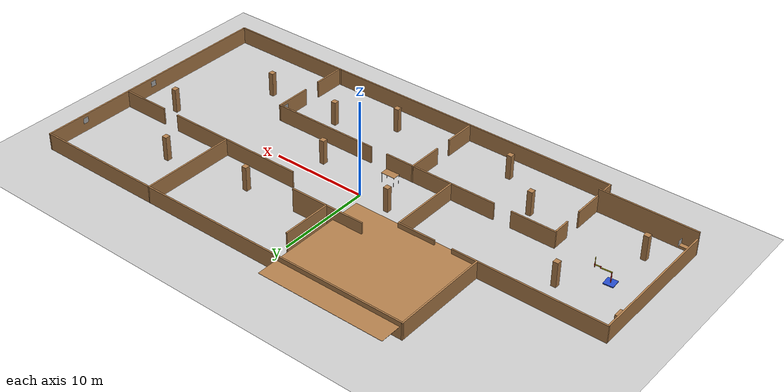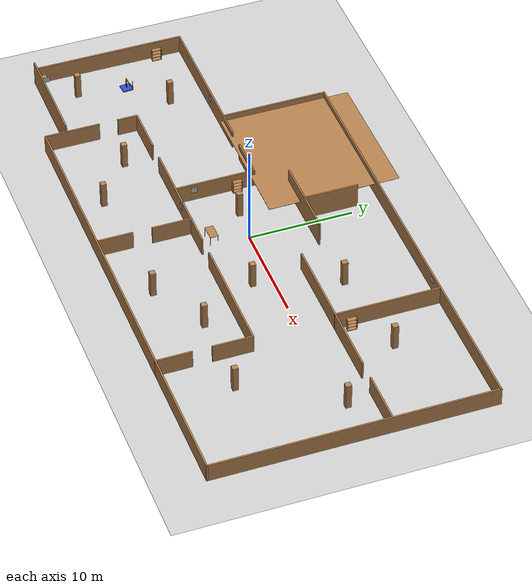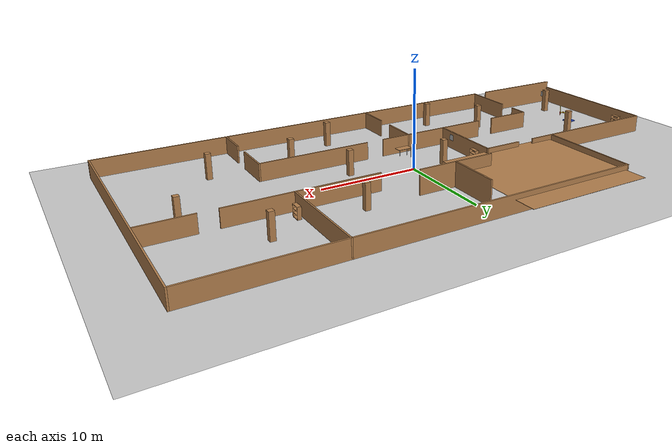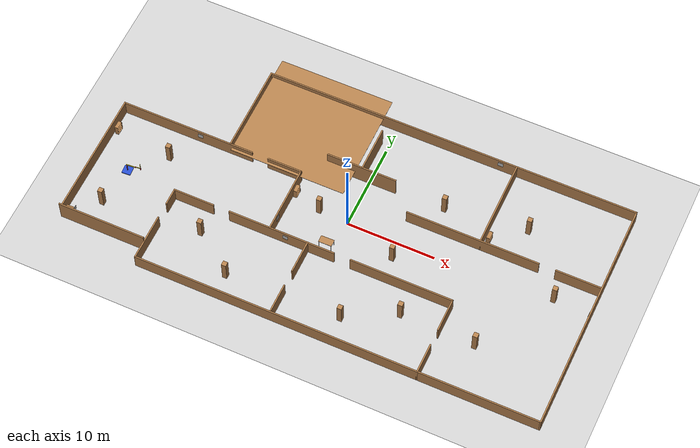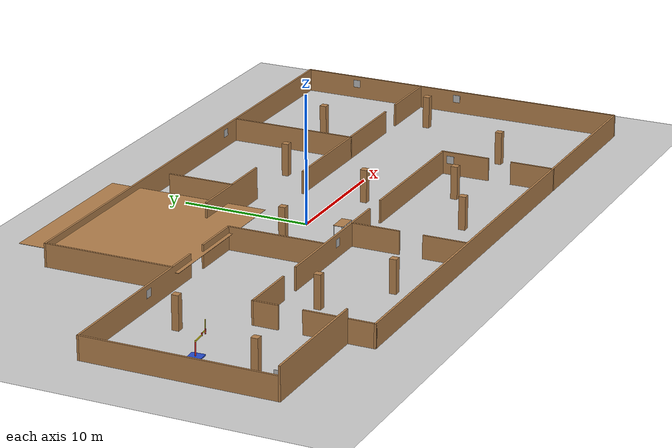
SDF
<sdf version="1.7">
 <world name="default">
  <light name="sun" type="directional">
   <pose>0 0 10 0 -0 0</pose>
   <diffuse>0.8 0.8 0.8 1</diffuse>
   <specular>0.2 0.2 0.2 1</specular>
   <attenuation>
    <range>1000</range>
    <constant>0.9</constant>
    <linear>0.01</linear>
    <quadratic>0.001</quadratic>
   </attenuation>
   <direction>-0.5 0.1 -0.9</direction>
   <spot><inner_angle>0</inner_angle><outer_angle>0</outer_angle><falloff>0</falloff></spot>
  </light>
  <model name="ground_plane">
   <static>1</static>
   <link name="link">
    <collision name="collision">
     <geometry><plane><normal>0 0 1</normal><size>25 25</size></plane></geometry>
     <surface><friction><ode><mu>100</mu><mu2>50</mu2></ode></friction></surface>
    </collision>
    <visual name="visual">
     <cast_shadows>0</cast_shadows>
     <geometry><plane><normal>0 0 1</normal><size>25 25</size></plane></geometry>
     <material>
      <script><uri>file://media/materials/scripts/gazebo.material</uri><name>Gazebo/Grey</name></script>
     </material>
    </visual>
   </link>
   <link name="startflag">
    <pose>0 0 0.115 0 -0 0</pose>
    <inertial>
     <mass>0.39</mass>
     <inertia><ixx>0.00058</ixx><ixy>0</ixy><ixz>0</ixz><iyy>0.00058</iyy><iyz>0</iyz><izz>0.00019</izz></inertia>
    </inertial>
    <collision name="collision"><geometry><box><size>1 1 0.01</size></box></geometry></collision>
    <visual name="visual">
     <geometry><box><size>1 1 0.01</size></box></geometry>
     <material>
      <script>
       <uri>model://apriltag/materials/scripts</uri>
       <uri>model://apriltag/materials/textures</uri>
       <name>startflag/Diffuse</name>
      </script>
     </material>
    </visual>
   </link>
  </model>
  <gravity>0 0 -9.8</gravity>
  <magnetic_field>6e-06 2.3e-05 -4.2e-05</magnetic_field>
  <atmosphere type="adiabatic"/>
  <plugin name="ros_interface_plugin" filename="librotors_gazebo_ros_interface_plugin.so"/>
  <physics name="default_physics" default="0" type="ode">
   <max_step_size>0.001</max_step_size>
   <real_time_factor>1</real_time_factor>
   <real_time_update_rate>1000</real_time_update_rate>
  </physics>
  <scene>
   <sky><clouds><speed>30</speed></clouds><sunrise>5</sunrise><time>10</time><sunset>15</sunset></sky>
   <ambient>0.5 0.5 0.5 1</ambient>
   <background>0.7 0.7 0.7 1</background>
   <shadows>1</shadows>
  </scene>
  <spherical_coordinates>
   <surface_model>EARTH_WGS84</surface_model>
   <latitude_deg>0</latitude_deg>
   <longitude_deg>0</longitude_deg>
   <elevation>0</elevation>
   <heading_deg>0</heading_deg>
  </spherical_coordinates>
  <model name="unit_box">
   <pose>-27.1631 -10.9468 1.01795 4e-06 -2e-06 0.014798</pose>
   <link name="link">
    <inertial>
     <mass>1</mass>
     <inertia>
      <ixx>0.166667</ixx>
      <ixy>0</ixy>
      <ixz>0</ixz>
      <iyy>0.166667</iyy>
      <iyz>0</iyz>
      <izz>0.166667</izz>
     </inertia>
    </inertial>
    <collision name="collision"><geometry><box><size>1 0.443614 0.00227714</size></box></geometry></collision>
    <visual name="visual">
     <geometry><box><size>1 0.443614 0.00227714</size></box></geometry>
     <material>
      <script><uri>file://media/materials/scripts/gazebo.material</uri><name>Gazebo/Wood</name></script>
     </material>
    </visual>
   </link>
   <static>0</static>
  </model>
  <model name="table">
   <static>0</static>
   <link name="link">
    <collision name="surface">
     <pose>0 0 1 0 -0 0</pose>
     <geometry><box><size>1.5 0.8 0.03</size></box></geometry>
     <surface><friction><ode><mu>0.6</mu><mu2>0.6</mu2></ode></friction></surface>
    </collision>
    <visual name="visual1">
     <pose>0 0 1 0 -0 0</pose>
     <geometry><box><size>1.5 0.8 0.03</size></box></geometry>
     <material>
      <script><uri>file://media/materials/scripts/gazebo.material</uri><name>Gazebo/Wood</name></script>
     </material>
    </visual>
    <collision name="front_left_leg">
     <pose>0.68 0.38 0.5 0 -0 0</pose>
     <geometry><cylinder><radius>0.02</radius><length>1</length></cylinder></geometry>
    </collision>
    <visual name="front_left_leg">
     <pose>0.68 0.38 0.5 0 -0 0</pose>
     <geometry><cylinder><radius>0.02</radius><length>1</length></cylinder></geometry>
     <material>
      <script><uri>file://media/materials/scripts/gazebo.material</uri><name>Gazebo/Grey</name></script>
     </material>
    </visual>
    <collision name="front_right_leg">
     <pose>0.68 -0.38 0.5 0 -0 0</pose>
     <geometry><cylinder><radius>0.02</radius><length>1</length></cylinder></geometry>
    </collision>
    <visual name="front_right_leg">
     <pose>0.68 -0.38 0.5 0 -0 0</pose>
     <geometry><cylinder><radius>0.02</radius><length>1</length></cylinder></geometry>
     <material>
      <script><uri>file://media/materials/scripts/gazebo.material</uri><name>Gazebo/Grey</name></script>
     </material>
    </visual>
    <collision name="back_right_leg">
     <pose>-0.68 -0.38 0.5 0 -0 0</pose>
     <geometry><cylinder><radius>0.02</radius><length>1</length></cylinder></geometry>
    </collision>
    <visual name="back_right_leg">
     <pose>-0.68 -0.38 0.5 0 -0 0</pose>
     <geometry><cylinder><radius>0.02</radius><length>1</length></cylinder></geometry>
     <material>
      <script><uri>file://media/materials/scripts/gazebo.material</uri><name>Gazebo/Grey</name></script>
     </material>
    </visual>
    <collision name="back_left_leg">
     <pose>-0.68 0.38 0.5 0 -0 0</pose>
     <geometry><cylinder><radius>0.02</radius><length>1</length></cylinder></geometry>
    </collision>
    <visual name="back_left_leg">
     <pose>-0.68 0.38 0.5 0 -0 0</pose>
     <geometry><cylinder><radius>0.02</radius><length>1</length></cylinder></geometry>
     <material>
      <script><uri>file://media/materials/scripts/gazebo.material</uri><name>Gazebo/Grey</name></script>
     </material>
    </visual>
    <inertial>
     <inertia><ixx>1</ixx><ixy>0</ixy><ixz>0</ixz><iyy>1</iyy><iyz>0</iyz><izz>1</izz></inertia>
     <mass>1</mass>
    </inertial>
   </link>
   <pose>-0.890347 -3.33155 -3e-06 -3e-06 0 0.015319</pose>
  </model>
  <model name="unit_box_0">
   <pose>-8.29153 8.90939 1.29125 -1e-06 -1e-06 0.000864</pose>
   <link name="link">
    <inertial>
     <mass>1</mass>
     <inertia>
      <ixx>0.166667</ixx>
      <ixy>0</ixy>
      <ixz>0</ixz>
      <iyy>0.166667</iyy>
      <iyz>0</iyz>
      <izz>0.166667</izz>
     </inertia>
    </inertial>
    <collision name="collision"><geometry><box><size>13.2598 12.8069 0.0224832</size></box></geometry></collision>
    <visual name="visual">
     <geometry><box><size>13.2598 12.8069 0.0224832</size></box></geometry>
     <material>
      <script><uri>file://media/materials/scripts/gazebo.material</uri><name>Gazebo/Wood</name></script>
     </material>
    </visual>
   </link>
   <static>0</static>
  </model>
  <model name="unit_box_0_clone">
   <pose>4.08237 -10.6562 1.29125 -1e-06 -1e-06 0.014305</pose>
   <link name="link">
    <inertial>
     <mass>1</mass>
     <inertia>
      <ixx>0.166667</ixx>
      <ixy>0</ixy>
      <ixz>0</ixz>
      <iyy>0.166667</iyy>
      <iyz>0</iyz>
      <izz>0.166667</izz>
     </inertia>
    </inertial>
    <collision name="collision"><geometry><box><size>0.52404 0.528614 2.5825</size></box></geometry></collision>
    <visual name="visual">
     <geometry><box><size>0.52404 0.528614 2.5825</size></box></geometry>
     <material>
      <script><uri>file://media/materials/scripts/gazebo.material</uri><name>Gazebo/Wood</name></script>
     </material>
    </visual>
   </link>
   <static>0</static>
  </model>
  <model name="unit_box_0_clone_0">
   <pose>8.5995 5.89903 1.29125 -1e-06 1e-06 -0.004119</pose>
   <link name="link">
    <inertial>
     <mass>1</mass>
     <inertia>
      <ixx>0.166667</ixx>
      <ixy>0</ixy>
      <ixz>0</ixz>
      <iyy>0.166667</iyy>
      <iyz>0</iyz>
      <izz>0.166667</izz>
     </inertia>
    </inertial>
    <collision name="collision"><geometry><box><size>0.52404 0.528614 2.5825</size></box></geometry></collision>
    <visual name="visual">
     <geometry><box><size>0.52404 0.528614 2.5825</size></box></geometry>
     <material>
      <script><uri>file://media/materials/scripts/gazebo.material</uri><name>Gazebo/Wood</name></script>
     </material>
    </visual>
   </link>
   <static>0</static>
  </model>
  <model name="unit_box_0_clone_2">
   <pose>9.54754 -7.70657 1.29125 -1e-06 -1e-06 0.000456</pose>
   <link name="link">
    <inertial>
     <mass>1</mass>
     <inertia>
      <ixx>0.166667</ixx>
      <ixy>0</ixy>
      <ixz>0</ixz>
      <iyy>0.166667</iyy>
      <iyz>0</iyz>
      <izz>0.166667</izz>
     </inertia>
    </inertial>
    <collision name="collision"><geometry><box><size>0.52404 0.528614 2.5825</size></box></geometry></collision>
    <visual name="visual">
     <geometry><box><size>0.52404 0.528614 2.5825</size></box></geometry>
     <material>
      <script><uri>file://media/materials/scripts/gazebo.material</uri><name>Gazebo/Wood</name></script>
     </material>
    </visual>
   </link>
   <static>0</static>
  </model>
  <model name="unit_box_0_clone_3">
   <pose>-3.36019 0.23049 1.29125 1e-06 -1e-06 0.00601</pose>
   <link name="link">
    <inertial>
     <mass>1</mass>
     <inertia>
      <ixx>0.166667</ixx>
      <ixy>0</ixy>
      <ixz>0</ixz>
      <iyy>0.166667</iyy>
      <iyz>0</iyz>
      <izz>0.166667</izz>
     </inertia>
    </inertial>
    <collision name="collision"><geometry><box><size>0.52404 0.528614 2.5825</size></box></geometry></collision>
    <visual name="visual">
     <geometry><box><size>0.52404 0.528614 2.5825</size></box></geometry>
     <material>
      <script><uri>file://media/materials/scripts/gazebo.material</uri><name>Gazebo/Wood</name></script>
     </material>
    </visual>
   </link>
   <static>0</static>
  </model>
  <model name="static_apriltag_0">
   <link name="link">
    <pose>0 0 0 0 1.57 0</pose>
    <inertial>
     <mass>0.39</mass>
     <inertia><ixx>0.00058</ixx><ixy>0</ixy><ixz>0</ixz><iyy>0.00058</iyy><iyz>0</iyz><izz>0.00019</izz></inertia>
    </inertial>
    <collision name="collision"><geometry><box><size>0.6 0.6 0.01</size></box></geometry></collision>
    <visual name="visual">
     <geometry><box><size>0.6 0.6 0.01</size></box></geometry>
     <material>
      <script>
       <uri>model://apriltag/materials/scripts</uri>
       <uri>model://apriltag/materials/textures</uri>
       <name>apriltag/Diffuse0</name>
      </script>
     </material>
    </visual>
    <gravity>0</gravity>
   </link>
   <pose>27.3262 -0.250082 1.2 0 -0 0</pose>
   <static>0</static>
   <pose>1.90787 0.108649 0 0 -0 0</pose>
  </model>
  <model name="static_apriltag_1">
   <link name="link">
    <pose>0 0 0 0 1.57 0</pose>
    <inertial>
     <mass>0.39</mass>
     <inertia><ixx>0.00058</ixx><ixy>0</ixy><ixz>0</ixz><iyy>0.00058</iyy><iyz>0</iyz><izz>0.00019</izz></inertia>
    </inertial>
    <collision name="collision"><geometry><box><size>0.6 0.6 0.01</size></box></geometry></collision>
    <visual name="visual">
     <geometry><box><size>0.6 0.6 0.01</size></box></geometry>
     <material>
      <script>
       <uri>model://apriltag/materials/scripts</uri>
       <uri>model://apriltag/materials/textures</uri>
       <name>apriltag/Diffuse1</name>
      </script>
     </material>
    </visual>
    <gravity>0</gravity>
   </link>
   <pose>27.3555 8.71301 1.2 0 -0 0</pose>
   <static>0</static>
   <pose>1.36256 0.459264 0 0 -0 0</pose>
  </model>
  <model name="static_apriltag_2">
   <link name="link">
    <pose>0 0 0 0 1.57 0</pose>
    <inertial>
     <mass>0.39</mass>
     <inertia><ixx>0.00058</ixx><ixy>0</ixy><ixz>0</ixz><iyy>0.00058</iyy><iyz>0</iyz><izz>0.00019</izz></inertia>
    </inertial>
    <collision name="collision"><geometry><box><size>0.6 0.6 0.01</size></box></geometry></collision>
    <visual name="visual">
     <geometry><box><size>0.6 0.6 0.01</size></box></geometry>
     <material>
      <script>
       <uri>model://apriltag/materials/scripts</uri>
       <uri>model://apriltag/materials/textures</uri>
       <name>apriltag/Diffuse2</name>
      </script>
     </material>
    </visual>
    <gravity>0</gravity>
   </link>
   <pose>-6.66377 -2.99869 1.2 0 -0 0</pose>
   <static>0</static>
   <pose>0.80811 0.829943 0 0 -0 0</pose>
  </model>
  <model name="static_apriltag_3">
   <link name="link">
    <pose>0 0 0 -1.57 1.57 -0</pose>
    <inertial>
     <mass>0.39</mass>
     <inertia><ixx>0.00058</ixx><ixy>0</ixy><ixz>0</ixz><iyy>0.00058</iyy><iyz>0</iyz><izz>0.00019</izz></inertia>
    </inertial>
    <collision name="collision"><geometry><box><size>0.6 0.6 0.01</size></box></geometry></collision>
    <visual name="visual">
     <geometry><box><size>0.6 0.6 0.01</size></box></geometry>
     <material>
      <script>
       <uri>model://apriltag/materials/scripts</uri>
       <uri>model://apriltag/materials/textures</uri>
       <name>apriltag/Diffuse3</name>
      </script>
     </material>
    </visual>
    <gravity>0</gravity>
   </link>
   <pose>-18.672 2.76225 1.2 0 -0 0</pose>
   <static>0</static>
   <pose>3.65849 3.02317 0 0 -0 0</pose>
  </model>
  <model name="static_apriltag_4">
   <link name="link">
    <pose>0 0 0 0 1.57 0</pose>
    <inertial>
     <mass>0.39</mass>
     <inertia><ixx>0.00058</ixx><ixy>0</ixy><ixz>0</ixz><iyy>0.00058</iyy><iyz>0</iyz><izz>0.00019</izz></inertia>
    </inertial>
    <collision name="collision"><geometry><box><size>0.6 0.6 0.01</size></box></geometry></collision>
    <visual name="visual">
     <geometry><box><size>0.6 0.6 0.01</size></box></geometry>
     <material>
      <script>
       <uri>model://apriltag/materials/scripts</uri>
       <uri>model://apriltag/materials/textures</uri>
       <name>apriltag/Diffuse4</name>
      </script>
     </material>
    </visual>
    <gravity>0</gravity>
   </link>
   <pose>13.9511 -5.41888 1.2 0 -0 0</pose>
   <static>0</static>
   <pose>3.93537 3.29316 0 0 -0 0</pose>
  </model>
  <model name="static_apriltag_5">
   <link name="link">
    <pose>0 0 0 -1.57 1.57 -0</pose>
    <inertial>
     <mass>0.39</mass>
     <inertia><ixx>0.00058</ixx><ixy>0</ixy><ixz>0</ixz><iyy>0.00058</iyy><iyz>0</iyz><izz>0.00019</izz></inertia>
    </inertial>
    <collision name="collision"><geometry><box><size>0.6 0.6 0.01</size></box></geometry></collision>
    <visual name="visual">
     <geometry><box><size>0.6 0.6 0.01</size></box></geometry>
     <material>
      <script>
       <uri>model://apriltag/materials/scripts</uri>
       <uri>model://apriltag/materials/textures</uri>
       <name>apriltag/Diffuse5</name>
      </script>
     </material>
    </visual>
    <gravity>0</gravity>
   </link>
   <pose>12.0603 12.9078 1.2 0 -0 0</pose>
   <static>0</static>
   <pose>5.04082 3.71574 0 0 -0 0</pose>
  </model>
  <model name="static_apriltag_6">
   <link name="link">
    <pose>0 0 0 -1.57 1.57 -0</pose>
    <inertial>
     <mass>0.39</mass>
     <inertia><ixx>0.00058</ixx><ixy>0</ixy><ixz>0</ixz><iyy>0.00058</iyy><iyz>0</iyz><izz>0.00019</izz></inertia>
    </inertial>
    <collision name="collision"><geometry><box><size>0.6 0.6 0.01</size></box></geometry></collision>
    <visual name="visual">
     <geometry><box><size>0.6 0.6 0.01</size></box></geometry>
     <material>
      <script>
       <uri>model://apriltag/materials/scripts</uri>
       <uri>model://apriltag/materials/textures</uri>
       <name>apriltag/Diffuse6</name>
      </script>
     </material>
    </visual>
    <gravity>0</gravity>
   </link>
   <pose>-4.93979 -4.87065 1.19372 -0.013081 0.015375 -0.0117</pose>
   <static>0</static>
   <pose>3.43144 4.34187 0 0 -0 0</pose>
  </model>
  <model name="static_apriltag_7">
   <link name="link">
    <pose>0 0 0 0 1.57 0</pose>
    <inertial>
     <mass>0.39</mass>
     <inertia><ixx>0.00058</ixx><ixy>0</ixy><ixz>0</ixz><iyy>0.00058</iyy><iyz>0</iyz><izz>0.00019</izz></inertia>
    </inertial>
    <collision name="collision"><geometry><box><size>0.6 0.6 0.01</size></box></geometry></collision>
    <visual name="visual">
     <geometry><box><size>0.6 0.6 0.01</size></box></geometry>
     <material>
      <script>
       <uri>model://apriltag/materials/scripts</uri>
       <uri>model://apriltag/materials/textures</uri>
       <name>apriltag/Diffuse7</name>
      </script>
     </material>
    </visual>
    <gravity>0</gravity>
   </link>
   <pose>-26.6208 -10.9627 1.2 0 -0 0</pose>
   <static>0</static>
   <pose>3.12393 4.47604 0 0 -0 0</pose>
  </model>
  <model name="bookshelf">
   <static>1</static>
   <link name="link">
    <inertial><mass>1</mass></inertial>
    <collision name="back">
     <pose>0 0.005 0.6 0 -0 0</pose>
     <geometry><box><size>0.9 0.01 1.2</size></box></geometry>
    </collision>
    <visual name="visual1">
     <pose>0 0.005 0.6 0 -0 0</pose>
     <geometry><box><size>0.9 0.01 1.2</size></box></geometry>
     <material>
      <script><uri>file://media/materials/scripts/gazebo.material</uri><name>Gazebo/Wood</name></script>
     </material>
    </visual>
    <collision name="left_side">
     <pose>0.45 -0.195 0.6 0 -0 0</pose>
     <geometry><box><size>0.02 0.4 1.2</size></box></geometry>
    </collision>
    <visual name="visual2">
     <pose>0.45 -0.195 0.6 0 -0 0</pose>
     <geometry><box><size>0.02 0.4 1.2</size></box></geometry>
     <material>
      <script><uri>file://media/materials/scripts/gazebo.material</uri><name>Gazebo/Wood</name></script>
     </material>
    </visual>
    <collision name="right_side">
     <pose>-0.45 -0.195 0.6 0 -0 0</pose>
     <geometry><box><size>0.02 0.4 1.2</size></box></geometry>
    </collision>
    <visual name="visual3">
     <pose>-0.45 -0.195 0.6 0 -0 0</pose>
     <geometry><box><size>0.02 0.4 1.2</size></box></geometry>
     <material>
      <script><uri>file://media/materials/scripts/gazebo.material</uri><name>Gazebo/Wood</name></script>
     </material>
    </visual>
    <collision name="bottom">
     <pose>0 -0.195 0.03 0 -0 0</pose>
     <geometry><box><size>0.88 0.4 0.06</size></box></geometry>
    </collision>
    <visual name="visual4">
     <pose>0 -0.195 0.03 0 -0 0</pose>
     <geometry><box><size>0.88 0.4 0.06</size></box></geometry>
     <material>
      <script><uri>file://media/materials/scripts/gazebo.material</uri><name>Gazebo/Wood</name></script>
     </material>
    </visual>
    <collision name="top">
     <pose>0 -0.195 1.19 0 -0 0</pose>
     <geometry><box><size>0.88 0.4 0.02</size></box></geometry>
    </collision>
    <visual name="visual5">
     <pose>0 -0.195 1.19 0 -0 0</pose>
     <geometry><box><size>0.88 0.4 0.02</size></box></geometry>
     <material>
      <script><uri>file://media/materials/scripts/gazebo.material</uri><name>Gazebo/Wood</name></script>
     </material>
    </visual>
    <collision name="low_shelf">
     <pose>0 -0.195 0.43 0 -0 0</pose>
     <geometry><box><size>0.88 0.4 0.02</size></box></geometry>
    </collision>
    <visual name="visual6">
     <pose>0 -0.195 0.43 0 -0 0</pose>
     <geometry><box><size>0.88 0.4 0.02</size></box></geometry>
     <material>
      <script><uri>file://media/materials/scripts/gazebo.material</uri><name>Gazebo/Wood</name></script>
     </material>
    </visual>
    <collision name="high_shelf">
     <pose>0 -0.195 0.8 0 -0 0</pose>
     <geometry><box><size>0.88 0.4 0.02</size></box></geometry>
    </collision>
    <visual name="visual7">
     <pose>0 -0.195 0.8 0 -0 0</pose>
     <geometry><box><size>0.88 0.4 0.02</size></box></geometry>
     <material>
      <script><uri>file://media/materials/scripts/gazebo.material</uri><name>Gazebo/Wood</name></script>
     </material>
    </visual>
   </link>
   <pose>-6.64498 1.14571 0 0 -0 1.57</pose>
  </model>
  <model name="simple_arm">
   <link name="arm_base">
    <inertial>
     <pose>0 0 0.00099 0 -0 0</pose>
     <inertia><ixx>1.11</ixx><ixy>0</ixy><ixz>0</ixz><iyy>100.11</iyy><iyz>0</iyz><izz>1.01</izz></inertia>
     <mass>101</mass>
    </inertial>
    <collision name="arm_base_geom">
     <pose>0 0 0.05 0 -0 0</pose>
     <geometry><box><size>1 1 0.1</size></box></geometry>
    </collision>
    <visual name="arm_base_geom_visual">
     <pose>0 0 0.05 0 -0 0</pose>
     <geometry><box><size>1 1 0.1</size></box></geometry>
     <material>
      <script><uri>file://media/materials/scripts/gazebo.material</uri><name>Gazebo/Blue</name></script>
     </material>
    </visual>
    <collision name="arm_base_geom_arm_trunk">
     <pose>0 0 0.6 0 -0 0</pose>
     <geometry><cylinder><radius>0.05</radius><length>1</length></cylinder></geometry>
    </collision>
    <visual name="arm_base_geom_arm_trunk_visual">
     <pose>0 0 0.6 0 -0 0</pose>
     <geometry><cylinder><radius>0.05</radius><length>1</length></cylinder></geometry>
     <material>
      <script><uri>file://media/materials/scripts/gazebo.material</uri><name>Gazebo/Red</name></script>
     </material>
    </visual>
   </link>
   <link name="arm_shoulder_pan">
    <pose>0 0 1.1 0 -0 0</pose>
    <inertial>
     <pose>0.045455 0 0 0 -0 0</pose>
     <inertia><ixx>0.011</ixx><ixy>0</ixy><ixz>0</ixz><iyy>0.0225</iyy><iyz>0</iyz><izz>0.0135</izz></inertia>
     <mass>1.1</mass>
    </inertial>
    <collision name="arm_shoulder_pan_geom">
     <pose>0 0 0.05 0 -0 0</pose>
     <geometry><cylinder><radius>0.05</radius><length>0.1</length></cylinder></geometry>
    </collision>
    <visual name="arm_shoulder_pan_geom_visual">
     <pose>0 0 0.05 0 -0 0</pose>
     <geometry><cylinder><radius>0.05</radius><length>0.1</length></cylinder></geometry>
     <material>
      <script><uri>file://media/materials/scripts/gazebo.material</uri><name>Gazebo/Yellow</name></script>
     </material>
    </visual>
    <collision name="arm_shoulder_pan_geom_arm_shoulder">
     <pose>0.55 0 0.05 0 -0 0</pose>
     <geometry><box><size>1 0.05 0.1</size></box></geometry>
    </collision>
    <visual name="arm_shoulder_pan_geom_arm_shoulder_visual">
     <pose>0.55 0 0.05 0 -0 0</pose>
     <geometry><box><size>1 0.05 0.1</size></box></geometry>
     <material>
      <script><uri>file://media/materials/scripts/gazebo.material</uri><name>Gazebo/Yellow</name></script>
     </material>
    </visual>
   </link>
   <link name="arm_elbow_pan">
    <pose>1.05 0 1.1 0 -0 0</pose>
    <inertial>
     <pose>0.0875 0 0.083333 0 -0 0</pose>
     <inertia>
      <ixx>0.031</ixx>
      <ixy>0</ixy>
      <ixz>0.005</ixz>
      <iyy>0.07275</iyy>
      <iyz>0</iyz>
      <izz>0.04475</izz>
     </inertia>
     <mass>1.2</mass>
    </inertial>
    <collision name="arm_elbow_pan_geom">
     <pose>0 0 0.1 0 -0 0</pose>
     <geometry><cylinder><radius>0.05</radius><length>0.2</length></cylinder></geometry>
    </collision>
    <visual name="arm_elbow_pan_geom_visual">
     <pose>0 0 0.1 0 -0 0</pose>
     <geometry><cylinder><radius>0.05</radius><length>0.2</length></cylinder></geometry>
     <material>
      <script><uri>file://media/materials/scripts/gazebo.material</uri><name>Gazebo/Red</name></script>
     </material>
    </visual>
    <collision name="arm_elbow_pan_geom_arm_elbow">
     <pose>0.3 0 0.15 0 -0 0</pose>
     <geometry><box><size>0.5 0.03 0.1</size></box></geometry>
    </collision>
    <visual name="arm_elbow_pan_geom_arm_elbow_visual">
     <pose>0.3 0 0.15 0 -0 0</pose>
     <geometry><box><size>0.5 0.03 0.1</size></box></geometry>
     <material>
      <script><uri>file://media/materials/scripts/gazebo.material</uri><name>Gazebo/Yellow</name></script>
     </material>
    </visual>
    <collision name="arm_elbow_pan_geom_arm_wrist">
     <pose>0.55 0 0.15 0 -0 0</pose>
     <geometry><cylinder><radius>0.05</radius><length>0.3</length></cylinder></geometry>
    </collision>
    <visual name="arm_elbow_pan_geom_arm_wrist_visual">
     <pose>0.55 0 0.15 0 -0 0</pose>
     <geometry><cylinder><radius>0.05</radius><length>0.3</length></cylinder></geometry>
     <material>
      <script><uri>file://media/materials/scripts/gazebo.material</uri><name>Gazebo/Red</name></script>
     </material>
    </visual>
   </link>
   <link name="arm_wrist_lift">
    <pose>1.6 0 1.05 0 -0 0</pose>
    <inertial>
     <inertia><ixx>0.01</ixx><ixy>0</ixy><ixz>0</ixz><iyy>0.01</iyy><iyz>0</iyz><izz>0.001</izz></inertia>
     <mass>0.1</mass>
    </inertial>
    <collision name="arm_wrist_lift_geom">
     <pose>0 0 0.5 0 -0 0</pose>
     <geometry><cylinder><radius>0.03</radius><length>1</length></cylinder></geometry>
    </collision>
    <visual name="arm_wrist_lift_geom_visual">
     <pose>0 0 0.5 0 -0 0</pose>
     <geometry><cylinder><radius>0.03</radius><length>1</length></cylinder></geometry>
     <material>
      <script><uri>file://media/materials/scripts/gazebo.material</uri><name>Gazebo/Yellow</name></script>
     </material>
    </visual>
   </link>
   <link name="arm_wrist_roll">
    <pose>1.6 0 1 0 -0 0</pose>
    <inertial>
     <inertia><ixx>0.01</ixx><ixy>0</ixy><ixz>0</ixz><iyy>0.01</iyy><iyz>0</iyz><izz>0.001</izz></inertia>
     <mass>0.1</mass>
    </inertial>
    <collision name="arm_wrist_roll_geom">
     <pose>0 0 0.025 0 -0 0</pose>
     <geometry><cylinder><radius>0.05</radius><length>0.05</length></cylinder></geometry>
    </collision>
    <visual name="arm_wrist_roll_geom_visual">
     <pose>0 0 0.025 0 -0 0</pose>
     <geometry><cylinder><radius>0.05</radius><length>0.05</length></cylinder></geometry>
     <material>
      <script><uri>file://media/materials/scripts/gazebo.material</uri><name>Gazebo/Red</name></script>
     </material>
    </visual>
   </link>
   <joint name="arm_shoulder_pan_joint" type="revolute">
    <parent>arm_base</parent>
    <child>arm_shoulder_pan</child>
    <axis>
     <dynamics>
      <damping>1</damping>
      <friction>0</friction>
      <spring_reference>0</spring_reference>
      <spring_stiffness>0</spring_stiffness>
     </dynamics>
     <xyz expressed_in="__model__">0 0 1</xyz>
     <limit><lower>-1e+16</lower><upper>1e+16</upper></limit>
    </axis>
   </joint>
   <joint name="arm_elbow_pan_joint" type="revolute">
    <parent>arm_shoulder_pan</parent>
    <child>arm_elbow_pan</child>
    <axis>
     <dynamics>
      <damping>1</damping>
      <friction>0</friction>
      <spring_reference>0</spring_reference>
      <spring_stiffness>0</spring_stiffness>
     </dynamics>
     <xyz expressed_in="__model__">0 0 1</xyz>
     <limit><lower>-1e+16</lower><upper>1e+16</upper></limit>
    </axis>
   </joint>
   <joint name="arm_wrist_lift_joint" type="prismatic">
    <parent>arm_elbow_pan</parent>
    <child>arm_wrist_lift</child>
    <axis>
     <dynamics>
      <damping>1</damping>
      <friction>0</friction>
      <spring_reference>0</spring_reference>
      <spring_stiffness>0</spring_stiffness>
     </dynamics>
     <limit><lower>-0.8</lower><upper>0.1</upper></limit>
     <xyz expressed_in="__model__">0 0 1</xyz>
    </axis>
   </joint>
   <joint name="arm_wrist_roll_joint" type="revolute">
    <parent>arm_wrist_lift</parent>
    <child>arm_wrist_roll</child>
    <axis>
     <dynamics>
      <damping>1</damping>
      <friction>0</friction>
      <spring_reference>0</spring_reference>
      <spring_stiffness>0</spring_stiffness>
     </dynamics>
     <limit><lower>-2.99999</lower><upper>2.99999</upper></limit>
     <xyz expressed_in="__model__">0 0 1</xyz>
    </axis>
   </joint>
   <pose>-24.2212 -3.75743 -5.4e-05 -0.00011 -1e-06 0.074633</pose>
  </model>
  <model name="house5">
   <pose>-0.2023 -0.36949 0 0 -0 0</pose>
   <link name="Wall_0">
    <pose>-17.7389 -8.8755 0 0 -0 -1.5708</pose>
    <visual name="Wall_0_Visual_0">
     <pose>-3.57821 0 0.9 0 -0 0</pose>
     <geometry><box><size>1.99359 0.15 1.8</size></box></geometry>
     <material>
      <script><uri>file://media/materials/scripts/gazebo.material</uri><name>Gazebo/Wood</name></script>
      <ambient>1 1 1 1</ambient>
     </material>
     <meta><layer>0</layer></meta>
    </visual>
    <collision name="Wall_0_Collision_0">
     <geometry><box><size>1.99359 0.15 1.8</size></box></geometry>
     <pose>-3.57821 0 0.9 0 -0 0</pose>
    </collision>
    <visual name="Wall_0_Visual_1">
     <pose>1.89679 0 0.9 0 -0 0</pose>
     <geometry><box><size>5.35641 0.15 1.8</size></box></geometry>
     <material>
      <script><uri>file://media/materials/scripts/gazebo.material</uri><name>Gazebo/Wood</name></script>
      <ambient>1 1 1 1</ambient>
     </material>
     <meta><layer>0</layer></meta>
    </visual>
    <collision name="Wall_0_Collision_1">
     <geometry><box><size>5.35641 0.15 1.8</size></box></geometry>
     <pose>1.89679 0 0.9 0 -0 0</pose>
    </collision>
   </link>
   <link name="Wall_1">
    <collision name="Wall_1_Collision">
     <geometry><box><size>32.15 0.15 1.8</size></box></geometry>
     <pose>0 0 0.9 0 -0 0</pose>
    </collision>
    <visual name="Wall_1_Visual">
     <pose>0 0 0.9 0 -0 0</pose>
     <geometry><box><size>32.15 0.15 1.8</size></box></geometry>
     <material>
      <script><uri>file://media/materials/scripts/gazebo.material</uri><name>Gazebo/Wood</name></script>
      <ambient>1 1 1 1</ambient>
     </material>
     <meta><layer>0</layer></meta>
    </visual>
    <pose>-1.73893 -13.3755 0 0 -0 0</pose>
   </link>
   <link name="Wall_12">
    <collision name="Wall_12_Collision">
     <geometry><box><size>10 0.15 2.5</size></box></geometry>
     <pose>0 0 1.25 0 -0 0</pose>
    </collision>
    <visual name="Wall_12_Visual">
     <pose>0 0 1.25 0 -0 0</pose>
     <geometry><box><size>10 0.15 2.5</size></box></geometry>
     <material>
      <script><uri>file://media/materials/scripts/gazebo.material</uri><name>Gazebo/Wood</name></script>
      <ambient>1 1 1 1</ambient>
     </material>
     <meta><layer>0</layer></meta>
    </visual>
    <pose>-22.742 -11.3396 0 0 -0 3.14158</pose>
   </link>
   <link name="Wall_13">
    <collision name="Wall_13_Collision">
     <geometry><box><size>14.75 0.15 1.8</size></box></geometry>
     <pose>0 0 0.9 0 -0 0</pose>
    </collision>
    <visual name="Wall_13_Visual">
     <pose>0 0 0.9 0 -0 0</pose>
     <geometry><box><size>14.75 0.15 1.8</size></box></geometry>
     <material>
      <script><uri>file://media/materials/scripts/gazebo.material</uri><name>Gazebo/Wood</name></script>
      <ambient>1 1 1 1</ambient>
     </material>
     <meta><layer>0</layer></meta>
    </visual>
    <pose>-27.6669 -4.0395 0 0 -0 1.5708</pose>
   </link>
   <link name="Wall_14">
    <pose>-17.1174 3.2605 0 0 -0 0</pose>
    <visual name="Wall_14_Visual_0">
     <pose>-2.90061 0 0.9 0 -0 0</pose>
     <geometry><box><size>15.448 0.15 1.8</size></box></geometry>
     <material>
      <script><uri>file://media/materials/scripts/gazebo.material</uri><name>Gazebo/Wood</name></script>
      <ambient>1 1 1 1</ambient>
     </material>
     <meta><layer>0</layer></meta>
    </visual>
    <collision name="Wall_14_Collision_0">
     <geometry><box><size>15.448 0.15 1.8</size></box></geometry>
     <pose>-2.90061 0 0.9 0 -0 0</pose>
    </collision>
    <visual name="Wall_14_Visual_1">
     <pose>8.62402 0 0.9 0 -0 0</pose>
     <geometry><box><size>4.00122 0.15 1.8</size></box></geometry>
     <material>
      <script><uri>file://media/materials/scripts/gazebo.material</uri><name>Gazebo/Wood</name></script>
      <ambient>1 1 1 1</ambient>
     </material>
     <meta><layer>0</layer></meta>
    </visual>
    <collision name="Wall_14_Collision_1">
     <geometry><box><size>4.00122 0.15 1.8</size></box></geometry>
     <pose>8.62402 0 0.9 0 -0 0</pose>
    </collision>
   </link>
   <link name="Wall_19">
    <collision name="Wall_19_Collision">
     <geometry><box><size>7.75 0.15 1.8</size></box></geometry>
     <pose>0 0 0.9 0 -0 0</pose>
    </collision>
    <visual name="Wall_19_Visual">
     <pose>0 0 0.9 0 -0 0</pose>
     <geometry><box><size>7.75 0.15 1.8</size></box></geometry>
     <material>
      <script><uri>file://media/materials/scripts/gazebo.material</uri><name>Gazebo/Wood</name></script>
      <ambient>1 1 1 1</ambient>
     </material>
     <meta><layer>0</layer></meta>
    </visual>
    <pose>-6.56794 -0.539499 0 0 -0 -1.5708</pose>
   </link>
   <link name="Wall_2">
    <pose>14.2611 -8.8755 0 0 -0 1.5708</pose>
    <visual name="Wall_2_Visual_0">
     <pose>-2.83827 0 0.9 0 -0 0</pose>
     <geometry><box><size>3.47346 0.15 1.8</size></box></geometry>
     <material>
      <script><uri>file://media/materials/scripts/gazebo.material</uri><name>Gazebo/Wood</name></script>
      <ambient>1 1 1 1</ambient>
     </material>
     <meta><layer>0</layer></meta>
    </visual>
    <collision name="Wall_2_Collision_0">
     <geometry><box><size>3.47346 0.15 1.8</size></box></geometry>
     <pose>-2.83827 0 0.9 0 -0 0</pose>
    </collision>
    <visual name="Wall_2_Visual_1">
     <pose>2.63673 0 0.9 0 -0 0</pose>
     <geometry><box><size>3.87654 0.15 1.8</size></box></geometry>
     <material>
      <script><uri>file://media/materials/scripts/gazebo.material</uri><name>Gazebo/Wood</name></script>
      <ambient>1 1 1 1</ambient>
     </material>
     <meta><layer>0</layer></meta>
    </visual>
    <collision name="Wall_2_Collision_1">
     <geometry><box><size>3.87654 0.15 1.8</size></box></geometry>
     <pose>2.63673 0 0.9 0 -0 0</pose>
    </collision>
   </link>
   <link name="Wall_3">
    <pose>-1.73893 -4.3755 0 0 -0 3.14159</pose>
    <visual name="Wall_3_Visual_0">
     <pose>-10.2503 0 0.9 0 -0 0</pose>
     <geometry><box><size>11.6494 0.15 1.8</size></box></geometry>
     <material>
      <script><uri>file://media/materials/scripts/gazebo.material</uri><name>Gazebo/Wood</name></script>
      <ambient>1 1 1 1</ambient>
     </material>
     <meta><layer>0</layer></meta>
    </visual>
    <collision name="Wall_3_Collision_0">
     <geometry><box><size>11.6494 0.15 1.8</size></box></geometry>
     <pose>-10.2503 0 0.9 0 -0 0</pose>
    </collision>
    <visual name="Wall_3_Visual_1">
     <pose>3.47661 0 0.9 0 -0 0</pose>
     <geometry><box><size>12.2045 0.15 1.8</size></box></geometry>
     <material>
      <script><uri>file://media/materials/scripts/gazebo.material</uri><name>Gazebo/Wood</name></script>
      <ambient>1 1 1 1</ambient>
     </material>
     <meta><layer>0</layer></meta>
    </visual>
    <collision name="Wall_3_Collision_1">
     <geometry><box><size>12.2045 0.15 1.8</size></box></geometry>
     <pose>3.47661 0 0.9 0 -0 0</pose>
    </collision>
    <visual name="Wall_3_Visual_2">
     <pose>13.7269 0 0.9 0 -0 0</pose>
     <geometry><box><size>4.69615 0.15 1.8</size></box></geometry>
     <material>
      <script><uri>file://media/materials/scripts/gazebo.material</uri><name>Gazebo/Wood</name></script>
      <ambient>1 1 1 1</ambient>
     </material>
     <meta><layer>0</layer></meta>
    </visual>
    <collision name="Wall_3_Collision_2">
     <geometry><box><size>4.69615 0.15 1.8</size></box></geometry>
     <pose>13.7269 0 0.9 0 -0 0</pose>
    </collision>
   </link>
   <link name="Wall_31">
    <collision name="Wall_31_Collision">
     <geometry><box><size>10.25 0.15 1.8</size></box></geometry>
     <pose>0 0 0.9 0 -0 0</pose>
    </collision>
    <visual name="Wall_31_Visual">
     <pose>0 0 0.9 0 -0 0</pose>
     <geometry><box><size>10.25 0.15 1.8</size></box></geometry>
     <material>
      <script><uri>file://media/materials/scripts/gazebo.material</uri><name>Gazebo/Wood</name></script>
      <ambient>1 1 1 1</ambient>
     </material>
     <meta><layer>0</layer></meta>
    </visual>
    <pose>-14.9329 8.3255 0 0 -0 1.5708</pose>
   </link>
   <link name="Wall_32">
    <collision name="Wall_32_Collision">
     <geometry><box><size>42.75 0.15 1.8</size></box></geometry>
     <pose>0 0 0.9 0 -0 0</pose>
    </collision>
    <visual name="Wall_32_Visual">
     <pose>0 0 0.9 0 -0 0</pose>
     <geometry><box><size>42.75 0.15 1.8</size></box></geometry>
     <material>
      <script><uri>file://media/materials/scripts/gazebo.material</uri><name>Gazebo/Wood</name></script>
      <ambient>1 1 1 1</ambient>
     </material>
     <meta><layer>0</layer></meta>
    </visual>
    <pose>6.36707 13.3755 0 0 -0 0</pose>
   </link>
   <link name="Wall_33">
    <collision name="Wall_33_Collision">
     <geometry><box><size>26.9014 0.15 1.8</size></box></geometry>
     <pose>0 0 0.9 0 -0 0</pose>
    </collision>
    <visual name="Wall_33_Visual">
     <pose>0 0 0.9 0 -0 0</pose>
     <geometry><box><size>26.9014 0.15 1.8</size></box></geometry>
     <material>
      <script><uri>file://media/materials/scripts/gazebo.material</uri><name>Gazebo/Wood</name></script>
      <ambient>1 1 1 1</ambient>
     </material>
     <meta><layer>0</layer></meta>
    </visual>
    <pose>27.6671 0 0 0 -0 -1.5708</pose>
   </link>
   <link name="Wall_34">
    <collision name="Wall_34_Collision">
     <geometry><box><size>13.75 0.15 1.8</size></box></geometry>
     <pose>0 0 0.9 0 -0 0</pose>
    </collision>
    <visual name="Wall_34_Visual">
     <pose>0 0 0.9 0 -0 0</pose>
     <geometry><box><size>13.75 0.15 1.8</size></box></geometry>
     <material>
      <script><uri>file://media/materials/scripts/gazebo.material</uri><name>Gazebo/Wood</name></script>
      <ambient>1 1 1 1</ambient>
     </material>
     <meta><layer>0</layer></meta>
    </visual>
    <pose>20.8671 -13.3755 0 0 -0 3.14159</pose>
   </link>
   <link name="Wall_36">
    <collision name="Wall_36_Collision">
     <geometry><box><size>10.161 0.15 1.8</size></box></geometry>
     <pose>0 0 0.9 0 -0 0</pose>
    </collision>
    <visual name="Wall_36_Visual">
     <pose>0 0 0.9 0 -0 0</pose>
     <geometry><box><size>10.161 0.15 1.8</size></box></geometry>
     <material>
      <script><uri>file://media/materials/scripts/gazebo.material</uri><name>Gazebo/Wood</name></script>
      <ambient>1 1 1 1</ambient>
     </material>
     <meta><layer>0</layer></meta>
    </visual>
    <pose>14.0821 8.37 0 0 -0 -1.5708</pose>
   </link>
   <link name="Wall_38">
    <pose>16.6591 3.3645 0 0 -0 0</pose>
    <visual name="Wall_38_Visual_0">
     <pose>-3.47126 0 0.9 0 -0 0</pose>
     <geometry><box><size>15.0575 0.15 1.8</size></box></geometry>
     <material>
      <script><uri>file://media/materials/scripts/gazebo.material</uri><name>Gazebo/Wood</name></script>
      <ambient>1 1 1 1</ambient>
     </material>
     <meta><layer>0</layer></meta>
    </visual>
    <collision name="Wall_38_Collision_0">
     <geometry><box><size>15.0575 0.15 1.8</size></box></geometry>
     <pose>-3.47126 0 0.9 0 -0 0</pose>
    </collision>
    <visual name="Wall_38_Visual_1">
     <pose>8.42873 0 0.9 0 -0 0</pose>
     <geometry><box><size>5.14253 0.15 1.8</size></box></geometry>
     <material>
      <script><uri>file://media/materials/scripts/gazebo.material</uri><name>Gazebo/Wood</name></script>
      <ambient>1 1 1 1</ambient>
     </material>
     <meta><layer>0</layer></meta>
    </visual>
    <collision name="Wall_38_Collision_1">
     <geometry><box><size>5.14253 0.15 1.8</size></box></geometry>
     <pose>8.42873 0 0.9 0 -0 0</pose>
    </collision>
   </link>
   <static>1</static>
  </model>
  <model name="wall1">
   <pose>-0.93933 6.73449 0 0 -0 0</pose>
   <link name="Wall_2">
    <collision name="Wall_2_Collision">
     <geometry><box><size>8 0.15 2.5</size></box></geometry>
     <pose>0 0 1.25 0 -0 0</pose>
    </collision>
    <visual name="Wall_2_Visual">
     <pose>0 0 1.25 0 -0 0</pose>
     <geometry><box><size>8 0.15 2.5</size></box></geometry>
     <material>
      <script><uri>file://media/materials/scripts/gazebo.material</uri><name>Gazebo/Wood</name></script>
      <ambient>1 1 1 1</ambient>
     </material>
     <meta><layer>0</layer></meta>
    </visual>
    <pose>0 -1.07869 0 0 -0 0</pose>
   </link>
   <link name="Wall_4">
    <collision name="Wall_4_Collision">
     <geometry><box><size>5.25 0.15 2.5</size></box></geometry>
     <pose>0 0 1.25 0 -0 0</pose>
    </collision>
    <visual name="Wall_4_Visual">
     <pose>0 0 1.25 0 -0 0</pose>
     <geometry><box><size>5.25 0.15 2.5</size></box></geometry>
     <material>
      <script><uri>file://media/materials/scripts/gazebo.material</uri><name>Gazebo/Wood</name></script>
      <ambient>1 1 1 1</ambient>
     </material>
     <meta><layer>0</layer></meta>
    </visual>
    <pose>0.077601 1.49143 0 0 -0 1.5708</pose>
   </link>
   <static>1</static>
  </model>
  <model name="wall2">
   <pose>-1.235 -6.8275 0 0 -0 0</pose>
   <link name="Wall_8">
    <pose>-1.16 -2.3275 0 0 -0 -1.5708</pose>
    <visual name="Wall_8_Visual_0">
     <pose>-2.57429 0 0.9 0 -0 0</pose>
     <geometry><box><size>3.85143 0.15 1.8</size></box></geometry>
     <material>
      <script><uri>file://media/materials/scripts/gazebo.material</uri><name>Gazebo/Wood</name></script>
      <ambient>1 1 1 1</ambient>
     </material>
     <meta><layer>0</layer></meta>
    </visual>
    <collision name="Wall_8_Collision_0">
     <geometry><box><size>3.85143 0.15 1.8</size></box></geometry>
     <pose>-2.57429 0 0.9 0 -0 0</pose>
    </collision>
    <visual name="Wall_8_Visual_1">
     <pose>2.82571 0 0.9 0 -0 0</pose>
     <geometry><box><size>3.34857 0.15 1.8</size></box></geometry>
     <material>
      <script><uri>file://media/materials/scripts/gazebo.material</uri><name>Gazebo/Wood</name></script>
      <ambient>1 1 1 1</ambient>
     </material>
     <meta><layer>0</layer></meta>
    </visual>
    <collision name="Wall_8_Collision_1">
     <geometry><box><size>3.34857 0.15 1.8</size></box></geometry>
     <pose>2.82571 0 0.9 0 -0 0</pose>
    </collision>
   </link>
   <static>1</static>
  </model>
  <model name="unit_box_0_clone_2_clone">
   <pose>-13.5267 -7.50144 1.29125 1e-06 1e-06 -0.000325</pose>
   <link name="link">
    <inertial>
     <mass>1</mass>
     <inertia>
      <ixx>0.166667</ixx>
      <ixy>0</ixy>
      <ixz>0</ixz>
      <iyy>0.166667</iyy>
      <iyz>0</iyz>
      <izz>0.166667</izz>
     </inertia>
    </inertial>
    <collision name="collision"><geometry><box><size>0.52404 0.528614 2.5825</size></box></geometry></collision>
    <visual name="visual">
     <geometry><box><size>0.52404 0.528614 2.5825</size></box></geometry>
     <material>
      <script><uri>file://media/materials/scripts/gazebo.material</uri><name>Gazebo/Wood</name></script>
     </material>
    </visual>
   </link>
   <static>0</static>
  </model>
  <model name="unit_box_0_clone_2_clone_0">
   <pose>-8.88767 -11.0177 1.29125 1e-06 -0 0.001046</pose>
   <link name="link">
    <inertial>
     <mass>1</mass>
     <inertia>
      <ixx>0.166667</ixx>
      <ixy>0</ixy>
      <ixz>0</ixz>
      <iyy>0.166667</iyy>
      <iyz>0</iyz>
      <izz>0.166667</izz>
     </inertia>
    </inertial>
    <collision name="collision"><geometry><box><size>0.52404 0.528614 2.5825</size></box></geometry></collision>
    <visual name="visual">
     <geometry><box><size>0.52404 0.528614 2.5825</size></box></geometry>
     <material>
      <script><uri>file://media/materials/scripts/gazebo.material</uri><name>Gazebo/Wood</name></script>
     </material>
    </visual>
   </link>
   <static>0</static>
  </model>
  <model name="unit_box_0_clone_2_clone_1">
   <pose>-24.7313 -8.45094 1.29125 1e-06 2e-06 -0.002865</pose>
   <link name="link">
    <inertial>
     <mass>1</mass>
     <inertia>
      <ixx>0.166667</ixx>
      <ixy>0</ixy>
      <ixz>0</ixz>
      <iyy>0.166667</iyy>
      <iyz>0</iyz>
      <izz>0.166667</izz>
     </inertia>
    </inertial>
    <collision name="collision"><geometry><box><size>0.52404 0.528614 2.5825</size></box></geometry></collision>
    <visual name="visual">
     <geometry><box><size>0.52404 0.528614 2.5825</size></box></geometry>
     <material>
      <script><uri>file://media/materials/scripts/gazebo.material</uri><name>Gazebo/Wood</name></script>
     </material>
    </visual>
   </link>
   <static>0</static>
  </model>
  <model name="unit_box_0_clone_2_clone_2">
   <pose>-20.7688 -0.517042 1.29125 0 -2e-06 0.003363</pose>
   <link name="link">
    <inertial>
     <mass>1</mass>
     <inertia>
      <ixx>0.166667</ixx>
      <ixy>0</ixy>
      <ixz>0</ixz>
      <iyy>0.166667</iyy>
      <iyz>0</iyz>
      <izz>0.166667</izz>
     </inertia>
    </inertial>
    <collision name="collision"><geometry><box><size>0.52404 0.528614 2.5825</size></box></geometry></collision>
    <visual name="visual">
     <geometry><box><size>0.52404 0.528614 2.5825</size></box></geometry>
     <material>
      <script><uri>file://media/materials/scripts/gazebo.material</uri><name>Gazebo/Wood</name></script>
     </material>
    </visual>
   </link>
   <static>0</static>
  </model>
  <model name="unit_box_0_clone_2_clone_3">
   <pose>17.7601 7.08001 1.29125 -1e-06 1e-06 -0.001602</pose>
   <link name="link">
    <inertial>
     <mass>1</mass>
     <inertia>
      <ixx>0.166667</ixx>
      <ixy>0</ixy>
      <ixz>0</ixz>
      <iyy>0.166667</iyy>
      <iyz>0</iyz>
      <izz>0.166667</izz>
     </inertia>
    </inertial>
    <collision name="collision"><geometry><box><size>0.52404 0.528614 2.5825</size></box></geometry></collision>
    <visual name="visual">
     <geometry><box><size>0.52404 0.528614 2.5825</size></box></geometry>
     <material>
      <script><uri>file://media/materials/scripts/gazebo.material</uri><name>Gazebo/Wood</name></script>
     </material>
    </visual>
   </link>
   <static>0</static>
  </model>
  <model name="unit_box_0_clone_2_clone_4">
   <pose>23.2294 0.558322 1.29125 1e-06 1e-06 0.002994</pose>
   <link name="link">
    <inertial>
     <mass>1</mass>
     <inertia>
      <ixx>0.166667</ixx>
      <ixy>0</ixy>
      <ixz>0</ixz>
      <iyy>0.166667</iyy>
      <iyz>0</iyz>
      <izz>0.166667</izz>
     </inertia>
    </inertial>
    <collision name="collision"><geometry><box><size>0.52404 0.528614 2.5825</size></box></geometry></collision>
    <visual name="visual">
     <geometry><box><size>0.52404 0.528614 2.5825</size></box></geometry>
     <material>
      <script><uri>file://media/materials/scripts/gazebo.material</uri><name>Gazebo/Wood</name></script>
     </material>
    </visual>
   </link>
   <static>0</static>
  </model>
  <model name="unit_box_0_clone_2_clone_5">
   <pose>17.918 -7.83677 1.29125 -1e-06 1e-06 0.002928</pose>
   <link name="link">
    <inertial>
     <mass>1</mass>
     <inertia>
      <ixx>0.166667</ixx>
      <ixy>0</ixy>
      <ixz>0</ixz>
      <iyy>0.166667</iyy>
      <iyz>0</iyz>
      <izz>0.166667</izz>
     </inertia>
    </inertial>
    <collision name="collision"><geometry><box><size>0.52404 0.528614 2.5825</size></box></geometry></collision>
    <visual name="visual">
     <geometry><box><size>0.52404 0.528614 2.5825</size></box></geometry>
     <material>
      <script><uri>file://media/materials/scripts/gazebo.material</uri><name>Gazebo/Wood</name></script>
     </material>
    </visual>
   </link>
   <static>0</static>
  </model>
  <model name="bookshelf_clone">
   <static>1</static>
   <link name="link">
    <inertial><mass>1</mass></inertial>
    <collision name="back">
     <pose>0 0.005 0.6 0 -0 0</pose>
     <geometry><box><size>0.9 0.01 1.2</size></box></geometry>
    </collision>
    <visual name="visual1">
     <pose>0 0.005 0.6 0 -0 0</pose>
     <geometry><box><size>0.9 0.01 1.2</size></box></geometry>
     <material>
      <script><uri>file://media/materials/scripts/gazebo.material</uri><name>Gazebo/Wood</name></script>
     </material>
    </visual>
    <collision name="left_side">
     <pose>0.45 -0.195 0.6 0 -0 0</pose>
     <geometry><box><size>0.02 0.4 1.2</size></box></geometry>
    </collision>
    <visual name="visual2">
     <pose>0.45 -0.195 0.6 0 -0 0</pose>
     <geometry><box><size>0.02 0.4 1.2</size></box></geometry>
     <material>
      <script><uri>file://media/materials/scripts/gazebo.material</uri><name>Gazebo/Wood</name></script>
     </material>
    </visual>
    <collision name="right_side">
     <pose>-0.45 -0.195 0.6 0 -0 0</pose>
     <geometry><box><size>0.02 0.4 1.2</size></box></geometry>
    </collision>
    <visual name="visual3">
     <pose>-0.45 -0.195 0.6 0 -0 0</pose>
     <geometry><box><size>0.02 0.4 1.2</size></box></geometry>
     <material>
      <script><uri>file://media/materials/scripts/gazebo.material</uri><name>Gazebo/Wood</name></script>
     </material>
    </visual>
    <collision name="bottom">
     <pose>0 -0.195 0.03 0 -0 0</pose>
     <geometry><box><size>0.88 0.4 0.06</size></box></geometry>
    </collision>
    <visual name="visual4">
     <pose>0 -0.195 0.03 0 -0 0</pose>
     <geometry><box><size>0.88 0.4 0.06</size></box></geometry>
     <material>
      <script><uri>file://media/materials/scripts/gazebo.material</uri><name>Gazebo/Wood</name></script>
     </material>
    </visual>
    <collision name="top">
     <pose>0 -0.195 1.19 0 -0 0</pose>
     <geometry><box><size>0.88 0.4 0.02</size></box></geometry>
    </collision>
    <visual name="visual5">
     <pose>0 -0.195 1.19 0 -0 0</pose>
     <geometry><box><size>0.88 0.4 0.02</size></box></geometry>
     <material>
      <script><uri>file://media/materials/scripts/gazebo.material</uri><name>Gazebo/Wood</name></script>
     </material>
    </visual>
    <collision name="low_shelf">
     <pose>0 -0.195 0.43 0 -0 0</pose>
     <geometry><box><size>0.88 0.4 0.02</size></box></geometry>
    </collision>
    <visual name="visual6">
     <pose>0 -0.195 0.43 0 -0 0</pose>
     <geometry><box><size>0.88 0.4 0.02</size></box></geometry>
     <material>
      <script><uri>file://media/materials/scripts/gazebo.material</uri><name>Gazebo/Wood</name></script>
     </material>
    </visual>
    <collision name="high_shelf">
     <pose>0 -0.195 0.8 0 -0 0</pose>
     <geometry><box><size>0.88 0.4 0.02</size></box></geometry>
    </collision>
    <visual name="visual7">
     <pose>0 -0.195 0.8 0 -0 0</pose>
     <geometry><box><size>0.88 0.4 0.02</size></box></geometry>
     <material>
      <script><uri>file://media/materials/scripts/gazebo.material</uri><name>Gazebo/Wood</name></script>
     </material>
    </visual>
   </link>
   <pose>-14.9503 7.12307 0 0 -0 1.57</pose>
  </model>
  <model name="bookshelf_clone_0">
   <static>1</static>
   <link name="link">
    <inertial><mass>1</mass></inertial>
    <collision name="back">
     <pose>0 0.005 0.6 0 -0 0</pose>
     <geometry><box><size>0.9 0.01 1.2</size></box></geometry>
    </collision>
    <visual name="visual1">
     <pose>0 0.005 0.6 0 -0 0</pose>
     <geometry><box><size>0.9 0.01 1.2</size></box></geometry>
     <material>
      <script><uri>file://media/materials/scripts/gazebo.material</uri><name>Gazebo/Wood</name></script>
     </material>
    </visual>
    <collision name="left_side">
     <pose>0.45 -0.195 0.6 0 -0 0</pose>
     <geometry><box><size>0.02 0.4 1.2</size></box></geometry>
    </collision>
    <visual name="visual2">
     <pose>0.45 -0.195 0.6 0 -0 0</pose>
     <geometry><box><size>0.02 0.4 1.2</size></box></geometry>
     <material>
      <script><uri>file://media/materials/scripts/gazebo.material</uri><name>Gazebo/Wood</name></script>
     </material>
    </visual>
    <collision name="right_side">
     <pose>-0.45 -0.195 0.6 0 -0 0</pose>
     <geometry><box><size>0.02 0.4 1.2</size></box></geometry>
    </collision>
    <visual name="visual3">
     <pose>-0.45 -0.195 0.6 0 -0 0</pose>
     <geometry><box><size>0.02 0.4 1.2</size></box></geometry>
     <material>
      <script><uri>file://media/materials/scripts/gazebo.material</uri><name>Gazebo/Wood</name></script>
     </material>
    </visual>
    <collision name="bottom">
     <pose>0 -0.195 0.03 0 -0 0</pose>
     <geometry><box><size>0.88 0.4 0.06</size></box></geometry>
    </collision>
    <visual name="visual4">
     <pose>0 -0.195 0.03 0 -0 0</pose>
     <geometry><box><size>0.88 0.4 0.06</size></box></geometry>
     <material>
      <script><uri>file://media/materials/scripts/gazebo.material</uri><name>Gazebo/Wood</name></script>
     </material>
    </visual>
    <collision name="top">
     <pose>0 -0.195 1.19 0 -0 0</pose>
     <geometry><box><size>0.88 0.4 0.02</size></box></geometry>
    </collision>
    <visual name="visual5">
     <pose>0 -0.195 1.19 0 -0 0</pose>
     <geometry><box><size>0.88 0.4 0.02</size></box></geometry>
     <material>
      <script><uri>file://media/materials/scripts/gazebo.material</uri><name>Gazebo/Wood</name></script>
     </material>
    </visual>
    <collision name="low_shelf">
     <pose>0 -0.195 0.43 0 -0 0</pose>
     <geometry><box><size>0.88 0.4 0.02</size></box></geometry>
    </collision>
    <visual name="visual6">
     <pose>0 -0.195 0.43 0 -0 0</pose>
     <geometry><box><size>0.88 0.4 0.02</size></box></geometry>
     <material>
      <script><uri>file://media/materials/scripts/gazebo.material</uri><name>Gazebo/Wood</name></script>
     </material>
    </visual>
    <collision name="high_shelf">
     <pose>0 -0.195 0.8 0 -0 0</pose>
     <geometry><box><size>0.88 0.4 0.02</size></box></geometry>
    </collision>
    <visual name="visual7">
     <pose>0 -0.195 0.8 0 -0 0</pose>
     <geometry><box><size>0.88 0.4 0.02</size></box></geometry>
     <material>
      <script><uri>file://media/materials/scripts/gazebo.material</uri><name>Gazebo/Wood</name></script>
     </material>
    </visual>
   </link>
   <pose>14.1884 4.37644 0 0 -0 1.57</pose>
  </model>
  <model name="bookshelf_clone_1">
   <static>1</static>
   <link name="link">
    <inertial><mass>1</mass></inertial>
    <collision name="back">
     <pose>0 0.005 0.6 0 -0 0</pose>
     <geometry><box><size>0.9 0.01 1.2</size></box></geometry>
    </collision>
    <visual name="visual1">
     <pose>0 0.005 0.6 0 -0 0</pose>
     <geometry><box><size>0.9 0.01 1.2</size></box></geometry>
     <material>
      <script><uri>file://media/materials/scripts/gazebo.material</uri><name>Gazebo/Wood</name></script>
     </material>
    </visual>
    <collision name="left_side">
     <pose>0.45 -0.195 0.6 0 -0 0</pose>
     <geometry><box><size>0.02 0.4 1.2</size></box></geometry>
    </collision>
    <visual name="visual2">
     <pose>0.45 -0.195 0.6 0 -0 0</pose>
     <geometry><box><size>0.02 0.4 1.2</size></box></geometry>
     <material>
      <script><uri>file://media/materials/scripts/gazebo.material</uri><name>Gazebo/Wood</name></script>
     </material>
    </visual>
    <collision name="right_side">
     <pose>-0.45 -0.195 0.6 0 -0 0</pose>
     <geometry><box><size>0.02 0.4 1.2</size></box></geometry>
    </collision>
    <visual name="visual3">
     <pose>-0.45 -0.195 0.6 0 -0 0</pose>
     <geometry><box><size>0.02 0.4 1.2</size></box></geometry>
     <material>
      <script><uri>file://media/materials/scripts/gazebo.material</uri><name>Gazebo/Wood</name></script>
     </material>
    </visual>
    <collision name="bottom">
     <pose>0 -0.195 0.03 0 -0 0</pose>
     <geometry><box><size>0.88 0.4 0.06</size></box></geometry>
    </collision>
    <visual name="visual4">
     <pose>0 -0.195 0.03 0 -0 0</pose>
     <geometry><box><size>0.88 0.4 0.06</size></box></geometry>
     <material>
      <script><uri>file://media/materials/scripts/gazebo.material</uri><name>Gazebo/Wood</name></script>
     </material>
    </visual>
    <collision name="top">
     <pose>0 -0.195 1.19 0 -0 0</pose>
     <geometry><box><size>0.88 0.4 0.02</size></box></geometry>
    </collision>
    <visual name="visual5">
     <pose>0 -0.195 1.19 0 -0 0</pose>
     <geometry><box><size>0.88 0.4 0.02</size></box></geometry>
     <material>
      <script><uri>file://media/materials/scripts/gazebo.material</uri><name>Gazebo/Wood</name></script>
     </material>
    </visual>
    <collision name="low_shelf">
     <pose>0 -0.195 0.43 0 -0 0</pose>
     <geometry><box><size>0.88 0.4 0.02</size></box></geometry>
    </collision>
    <visual name="visual6">
     <pose>0 -0.195 0.43 0 -0 0</pose>
     <geometry><box><size>0.88 0.4 0.02</size></box></geometry>
     <material>
      <script><uri>file://media/materials/scripts/gazebo.material</uri><name>Gazebo/Wood</name></script>
     </material>
    </visual>
    <collision name="high_shelf">
     <pose>0 -0.195 0.8 0 -0 0</pose>
     <geometry><box><size>0.88 0.4 0.02</size></box></geometry>
    </collision>
    <visual name="visual7">
     <pose>0 -0.195 0.8 0 -0 0</pose>
     <geometry><box><size>0.88 0.4 0.02</size></box></geometry>
     <material>
      <script><uri>file://media/materials/scripts/gazebo.material</uri><name>Gazebo/Wood</name></script>
     </material>
    </visual>
   </link>
   <pose>-27.6255 0.364825 0 0 -0 1.57</pose>
  </model>
  <model name="unit_box_0_clone_0_clone">
   <pose>6.01882 -1.88394 1.29125 0 1e-06 -0.003948</pose>
   <link name="link">
    <inertial>
     <mass>1</mass>
     <inertia>
      <ixx>0.166667</ixx>
      <ixy>0</ixy>
      <ixz>0</ixz>
      <iyy>0.166667</iyy>
      <iyz>0</iyz>
      <izz>0.166667</izz>
     </inertia>
    </inertial>
    <collision name="collision"><geometry><box><size>0.52404 0.528614 2.5825</size></box></geometry></collision>
    <visual name="visual">
     <geometry><box><size>0.52404 0.528614 2.5825</size></box></geometry>
     <material>
      <script><uri>file://media/materials/scripts/gazebo.material</uri><name>Gazebo/Wood</name></script>
     </material>
    </visual>
   </link>
   <static>0</static>
  </model>
 </world>
</sdf>
